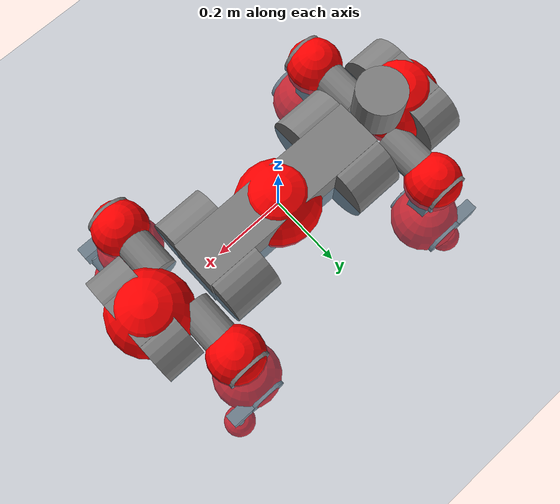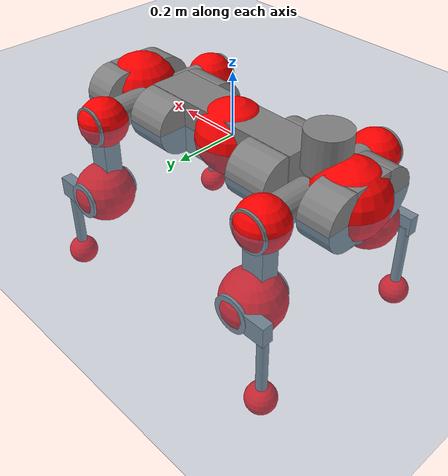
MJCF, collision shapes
<mujoco model="anymal_c">
  <compiler angle="radian" assetdir="assets" balanceinertia="true" inertiafromgeom="false"/>

  <option timestep="0.005" density="1.2" viscosity="2e-05"/>

  <size nkey="1"/>

  <visual>
    <quality shadowsize="8192"/>
    <map shadowclip="0.5"/>
  </visual>

  <default>
    <default class="/">
      <material specular="0" shininess="0.25"/>
      <geom contype="0" conaffinity="0" group="1" solref="-1000 -80"/>
      <site size="0.01 0.005 0.005" group="5"/>
      <general forcelimited="true" forcerange="-80 80" biastype="affine" gainprm="80" biasprm="0 -80 -2"/>
      <default class="anymal_c">
        <joint armature="0.01" damping="0.01" frictionloss="0.1"/>
        <default class="visual">
          <geom type="mesh" group="2"/>
          <default class="visual_zflip"/>
        </default>
        <default class="collision">
          <geom type="cylinder" group="3"/>
          <default class="foot">
            <geom size="0.03 0 0" type="sphere" condim="6" priority="1" friction="0.8 0.02 0.01" solimp="0.015 1 0.03"/>
          </default>
        </default>
      </default>
      <default class="reward_collision_sphere">
        <geom group="5" rgba="1 0 0 1"/>
      </default>
    </default>
  </default>

  <asset>
    <texture type="skybox" colorspace="auto" name="//unnamed_texture_0" builtin="gradient" rgb1="0.95 0.95 0.95" rgb2="0.95 0.95 0.95" width="100" height="600"/>
    <texture type="2d" colorspace="auto" name="texplane" builtin="checker" rgb1="0.345 0.575 0.748" rgb2="0.345 0.575 0.748" markrgb="1 1 1" width="512" height="512"/>
    <texture type="2d" colorspace="linear" name="base" file="base.png"/>
    <texture type="2d" colorspace="linear" name="top_shell" file="top_shell.png"/>
    <texture type="2d" colorspace="linear" name="bottom_shell" file="bottom_shell.png"/>
    <texture type="2d" colorspace="linear" name="remote" file="remote.png"/>
    <texture type="2d" colorspace="linear" name="hatch" file="hatch.png"/>
    <texture type="2d" colorspace="linear" name="handle" file="handle.png"/>
    <texture type="2d" colorspace="linear" name="face" file="face.png"/>
    <texture type="2d" colorspace="linear" name="battery" file="battery.png"/>
    <texture type="2d" colorspace="linear" name="lidar_cage" file="lidar_cage.png"/>
    <texture type="2d" colorspace="linear" name="depth_camera" file="depth_camera.png"/>
    <texture type="2d" colorspace="linear" name="wide_angle_camera" file="wide_angle_camera.png"/>
    <texture type="2d" colorspace="linear" name="lidar" file="lidar.png"/>
    <texture type="2d" colorspace="linear" name="drive" file="drive.png"/>
    <texture type="2d" colorspace="linear" name="hip_l" file="hip_l.png"/>
    <texture type="2d" colorspace="linear" name="shank_l" file="shank_l.png"/>
    <texture type="2d" colorspace="linear" name="foot" file="foot.png"/>
    <texture type="2d" colorspace="linear" name="thigh" file="thigh.png"/>
    <texture type="2d" colorspace="linear" name="shank_r" file="shank_r.png"/>
    <texture type="2d" colorspace="linear" name="hip_r" file="hip_r.png"/>
    <material name="MatPlane" class="/" texture="texplane" texuniform="true" texrepeat="2 2" specular="0.9" shininess="0.5"/>
    <material name="black_plastic" class="/" rgba="0.007 0.007 0.007 1"/>
    <material name="green" class="/" rgba="0.052 0.178 0.033 1"/>
    <material name="red" class="/" rgba="0.178 0.006 0.005 1"/>
    <material name="yellow" class="/" rgba="0.178 0.119 0.006 1"/>
    <material name="lwl" class="/" rgba="0.8 0.8 0.8 1"/>
    <material name="base" class="/" texture="base"/>
    <material name="top_shell" class="/" texture="top_shell"/>
    <material name="bottom_shell" class="/" texture="bottom_shell"/>
    <material name="hip_l" class="/" texture="hip_l"/>
    <material name="thigh" class="/" texture="thigh"/>
    <material name="shank_l" class="/" texture="shank_l"/>
    <material name="foot" class="/" texture="foot"/>
    <material name="hip_r" class="/" texture="hip_r"/>
    <material name="shank" class="/" texture="shank_r"/>
    <material name="hatch" class="/" texture="hatch"/>
    <material name="remote" class="/" texture="remote"/>
    <material name="handle" class="/" texture="handle"/>
    <material name="face" class="/" texture="face"/>
    <material name="depth_camera" class="/" texture="depth_camera"/>
    <material name="wide_angle_camera" class="/" texture="wide_angle_camera"/>
    <material name="battery" class="/" texture="battery"/>
    <material name="lidar_cage" class="/" texture="lidar_cage"/>
    <material name="lidar" class="/" texture="lidar"/>
    <material name="drive" class="/" texture="drive"/>
    <mesh name="base_0" class="/" file="base_0.obj"/>
    <mesh name="base_1" class="/" file="base_1.obj"/>
    <mesh name="base_2" class="/" file="base_2.obj"/>
    <mesh name="base_3" class="/" file="base_3.obj"/>
    <mesh name="base_4" class="/" file="base_4.obj"/>
    <mesh name="base_5" class="/" file="base_5.obj"/>
    <mesh name="top_shell" class="/" file="top_shell.obj"/>
    <mesh name="bottom_shell" class="/" file="bottom_shell.obj"/>
    <mesh name="remote" class="/" file="remote.obj"/>
    <mesh name="handle" class="/" file="handle.obj"/>
    <mesh name="face" class="/" file="face.obj"/>
    <mesh name="wide_angle_camera" class="/" file="wide_angle_camera.obj"/>
    <mesh name="depth_camera" class="/" file="depth_camera.obj"/>
    <mesh name="battery" class="/" file="battery.obj"/>
    <mesh name="lidar_cage" class="/" file="lidar_cage.obj"/>
    <mesh name="lidar" class="/" file="lidar.obj"/>
    <mesh name="drive" class="/" file="drive.obj"/>
    <mesh name="hip_l" class="/" file="hip_l.obj"/>
    <mesh name="thigh" class="/" file="thigh.obj"/>
    <mesh name="shank_l" class="/" file="shank_l.obj"/>
    <mesh name="foot" class="/" file="foot.obj"/>
    <mesh name="hip_r" class="/" file="hip_r.obj"/>
    <mesh name="hatch" class="/" file="hatch.obj"/>
    <mesh name="shank_r" class="/" file="shank_r.obj"/>
  </asset>

  <worldbody>
    <geom name="floor" class="/" size="100 100 0.125" type="plane" group="0" material="MatPlane"/>
    <light name="toplight_shadow" class="/" pos="0 0 5" dir="0.0990148 0.0990148 -0.990148" type="directional" ambient="0.04 0.04 0.04" diffuse="0.55 0.55 0.55" specular="0.12 0.12 0.12"/>
    <light name="toplight_fill" class="/" pos="0 0 5" dir="0.0990148 0.0990148 -0.990148" type="directional" castshadow="false" ambient="0.04 0.04 0.04" diffuse="0.3 0.3 0.3" specular="0.08 0.08 0.08"/>
    <body name="trunk" childclass="anymal_c" pos="2.34992e-05 -0.00232646 -0.00255732" quat="1 -0.000370483 0.000706674 0.000139733">
      <inertial pos="0.00293552 0.000344495 0.0417929" quat="0.489536 0.500524 0.506059 0.50372" mass="17.7122" diaginertia="0.485718 0.952241 0.0997688"/>
      <joint name="//unnamed_joint_0" type="free" armature="0" damping="0" frictionloss="0"/>
      <geom name="//unnamed_geom_1" class="visual" material="green" mesh="base_0"/>
      <geom name="//unnamed_geom_2" class="visual" material="yellow" mesh="base_1"/>
      <geom name="//unnamed_geom_3" class="visual" material="red" mesh="base_2"/>
      <geom name="//unnamed_geom_4" class="visual" material="black_plastic" mesh="base_3"/>
      <geom name="//unnamed_geom_5" class="visual" material="lwl" mesh="base_4"/>
      <geom name="//unnamed_geom_6" class="visual" material="base" mesh="base_5"/>
      <geom name="trunk_1" class="collision" size="0.279042 0.067355 0.0865992" type="box"/>
      <geom name="trunk_2" class="collision" size="0.0865992 0.0697605" pos="0.206231 0.0761063 0" quat="0.707107 0 0.707107 0"/>
      <geom name="trunk_3" class="collision" size="0.0865992 0.0697605" pos="-0.206231 0.0761063 0" quat="0.707107 0 0.707107 0"/>
      <geom name="trunk_4" class="collision" size="0.0865992 0.0697605" pos="0.206231 -0.0761063 0" quat="0.707107 0 0.707107 0"/>
      <geom name="trunk_5" class="collision" size="0.0865992 0.0697605" pos="-0.206231 -0.0761063 0" quat="0.707107 0 0.707107 0"/>
      <geom name="//unnamed_geom_12" class="visual" material="top_shell" mesh="top_shell"/>
      <geom name="//unnamed_geom_13" class="visual" material="bottom_shell" mesh="bottom_shell"/>
      <geom name="//unnamed_geom_14" class="visual" material="remote" mesh="remote"/>
      <geom name="//unnamed_geom_15" class="visual" material="handle" mesh="handle"/>
      <geom name="//unnamed_geom_16" class="visual" pos="0.393025 0 0" quat="1 0 0 0" material="face" mesh="face"/>
      <geom name="trunk_6" class="collision" size="0.0529218 0.067355 0.0865992" pos="0.445175 0 0" type="box"/>
      <geom name="//unnamed_geom_18" class="collision" size="0.0865992 0.0529218" pos="0.445175 0.0761063 0" quat="0.707107 0 0.707107 0"/>
      <geom name="//unnamed_geom_19" class="collision" size="0.0865992 0.0529218" pos="0.445175 -0.0761063 0" quat="0.707107 0 0.707107 0"/>
      <geom name="//unnamed_geom_20" class="visual" pos="0.437728 0 -0.0241186" quat="0.965926 0 0.258819 0" material="depth_camera" mesh="depth_camera"/>
      <geom name="//unnamed_geom_21" class="visual" pos="0.486422 0 0.0127427" material="wide_angle_camera" mesh="wide_angle_camera"/>
      <geom name="//unnamed_geom_22" class="visual_zflip" pos="-0.393025 0 0" quat="0 0 0 1" material="face" mesh="face"/>
      <geom name="trunk_7" class="collision" size="0.0529218 0.067355 0.0865992" pos="-0.445175 0 0" quat="0 0 0 1" type="box"/>
      <geom name="//unnamed_geom_24" class="collision" size="0.0865992 0.0529218" pos="-0.445175 -0.0761063 0" quat="0 -0.707107 0 0.707107"/>
      <geom name="//unnamed_geom_25" class="collision" size="0.0865992 0.0529218" pos="-0.445175 0.0761063 0" quat="0 -0.707107 0 0.707107"/>
      <geom name="//unnamed_geom_26" class="visual" pos="-0.437728 0 -0.0241186" quat="0 -0.258819 0 0.965926" material="depth_camera" mesh="depth_camera"/>
      <geom name="//unnamed_geom_27" class="visual_zflip" pos="-0.486422 0 0.0127427" quat="0 0 0 1" material="wide_angle_camera" mesh="wide_angle_camera"/>
      <geom name="//unnamed_geom_28" class="visual" material="battery" mesh="battery"/>
      <geom name="//unnamed_geom_29" class="visual" pos="0 0.0849503 0.0254649" quat="0.683013 -0.183013 0.183013 0.683013" material="depth_camera" mesh="depth_camera"/>
      <geom name="//unnamed_geom_30" class="visual" pos="0 -0.0849503 0.0254649" quat="0.683013 0.183013 0.183013 -0.683013" material="depth_camera" mesh="depth_camera"/>
      <geom name="//unnamed_geom_31" class="visual" pos="-0.345141 0 0.0625645" quat="1 0 0 0" material="lidar_cage" mesh="lidar_cage"/>
      <geom name="trunk_8" class="collision" size="0.067355 0.0577328" pos="-0.345141 0 0.113638"/>
      <geom name="//unnamed_geom_33" class="visual" pos="-0.345141 5.46259e-05 0.121043" quat="0.707107 0 0 -0.707107" material="lidar" mesh="lidar"/>
      <geom name="//unnamed_geom_34" class="visual" pos="0.284362 0.112988 4.07128e-09" quat="0.258819 0.965926 0 0" material="drive" mesh="drive"/>
      <geom name="//unnamed_geom_35" class="visual" pos="0.284362 -0.112988 -4.07128e-09" quat="0.258819 -0.965926 0 0" material="drive" mesh="drive"/>
      <geom name="//unnamed_geom_36" class="visual" pos="-0.284362 0.112988 -4.07128e-09" quat="0 0 0.965926 -0.258819" material="drive" mesh="drive"/>
      <geom name="//unnamed_geom_37" class="visual" pos="-0.284362 -0.112988 4.07128e-09" quat="0 0 -0.965926 -0.258819" material="drive" mesh="drive"/>
      <geom name="//unnamed_geom_38" class="visual" pos="0.10999 0 0.0621389" quat="1 0 0 0" material="hatch" mesh="hatch"/>
      <geom name="//unnamed_geom_39" class="reward_collision_sphere" size="0.115466"/>
      <geom name="//unnamed_geom_40" class="reward_collision_sphere" size="0.115466" pos="0.426686 0 0"/>
      <geom name="//unnamed_geom_41" class="reward_collision_sphere" size="0.115466" pos="-0.426686 0 0"/>
      <site name="imu" pos="0.231431 0.0212102 0.0305706" size="0.00962214"/>
      <camera name="track" pos="0 -2.17447 0" quat="0.707107 0.707107 0 0" mode="trackcom"/>
      <camera name="ego_camera" pos="0.426686 0 -0.0340487" quat="-0.5 -0.5 0.5 0.5"/>
      <body name="LF_HIP" pos="0.282214 0.110845 0.00281601" quat="0.258899 0.965904 4.8649e-05 -8.7468e-05">
        <inertial pos="0.0544169 -0.0191067 -0.00965891" quat="-0.126489 0.707069 -0.133723 0.682768" mass="2.51163" diaginertia="0.00452779 0.00753276 0.00154186"/>
        <joint name="LF_HAA" pos="0 0 0" axis="0.999972 -0.00234809 0.00707906" range="-0.700627 0.467362" armature="0.0105667" damping="0" frictionloss="0.108991"/>
        <geom name="//unnamed_geom_42" class="visual" pos="0 0.000239495 -3.93368e-05" quat="0.258819 -0.965926 0 0" material="hip_l" mesh="hip_l"/>
        <geom name="//unnamed_geom_43" class="visual" pos="0.0567966 -0.070568 -0.0389968" quat="0.183013 -0.683013 0.683013 0.183013" material="drive" mesh="drive"/>
        <geom name="//unnamed_geom_44" class="collision" size="0.0481107 0.067355" pos="0.0567966 -0.0130031 -0.00587766" quat="-0.353553 -0.612372 0.612372 -0.353553"/>
        <body name="LF_THIGH" pos="0.0555818 -0.0788569 -0.0338332" quat="0.183615 -0.682837 0.683015 0.183059">
          <inertial pos="0.0292721 -0.000618294 -0.208283" quat="0.993461 -0.00806033 -0.0775671 0.0833884" mass="2.68616" diaginertia="0.0234033 0.0464555 0.00181377"/>
          <joint name="LF_HFE" pos="0 0 0" axis="0.999912 -0.00478232 0.0123539" range="-3.17326 3.17805" armature="0.0105852" damping="0.00764481" frictionloss="0.10969"/>
          <geom name="//unnamed_geom_45" class="visual" pos="-0.00276639 -4.35919e-06 0" quat="0.707107 0 0 -0.707107" material="thigh" mesh="thigh"/>
          <geom name="//unnamed_geom_46" class="collision" size="0.0625439 0.0384885" pos="0.0379276 0 0" quat="0.5 0.5 -0.5 -0.5"/>
          <geom name="//unnamed_geom_47" class="collision" size="0.036083 0.0288664 0.135974" pos="0.0284457 0 -0.120289" quat="0.707107 0 0 -0.707107" type="box"/>
          <geom name="//unnamed_geom_48" class="visual" pos="0.0951035 0 -0.242597" quat="1 0 0 0" material="drive" mesh="drive"/>
          <geom name="//unnamed_geom_49" class="collision" size="0.0481107 0.067355" pos="0.0287302 0 -0.242597" quat="0.707107 0 0.707107 0"/>
          <geom name="//unnamed_geom_50" class="reward_collision_sphere" size="0.0769771" pos="0.0237048 0 0"/>
          <body name="LF_SHANK" pos="0.0968908 -0.000154965 -0.243273" quat="0.999999 -0.00116021 0.000104906 0.000391435">
            <inertial pos="0.00786314 -0.063794 -0.0707438" quat="0.99321 -0.11275 0.000741794 -0.0286636" mass="0.536781" diaginertia="0.0075823 0.0145371 0.000485023"/>
            <joint name="LF_KFE" pos="0 0 0" axis="0.999956 -0.00488533 0.00798408" range="-3.12552 3.11255" armature="0.00816068" damping="0.0106761" frictionloss="0.0960274"/>
            <geom name="//unnamed_geom_51" class="visual" pos="-0.00090206 -0.00480983 0" quat="0.707107 0 0 -0.707107" material="shank_l" mesh="shank_l"/>
            <geom name="LF_kfe_act" class="collision" size="0.0577328 0.0192443" pos="0.0189638 0 0" quat="0.5 0.5 -0.5 -0.5"/>
            <geom name="//unnamed_geom_53" class="collision" size="0.0553263 0.0324747 0.0182821" pos="0.0189638 -0.0625148 0" quat="0.5 0.5 -0.5 -0.5" type="box"/>
            <geom name="//unnamed_geom_54" class="visual" pos="0.0123741 -0.0971721 -0.287686" quat="0.382683 0 0 -0.92388" material="foot" mesh="foot"/>
            <geom name="LF_calf" class="collision" size="0.0168387 0.135915" pos="0.0123739 -0.0956221 -0.143843" quat="0.707107 0 0 -0.707107"/>
            <geom name="LF_foot" class="foot" size="0.0344532" pos="0.0123739 -0.0956221 -0.268534" quat="0.707107 0 0 -0.707107"/>
            <geom name="//unnamed_geom_57" class="reward_collision_sphere" size="0.0962214" pos="-0.0474095 0 0"/>
            <geom name="//unnamed_geom_58" class="reward_collision_sphere" size="0.0481107" pos="0.0123739 -0.0956221 -0.268534"/>
            <site name="LF_foot" class="foot" pos="0.0123739 -0.0956221 -0.268534" quat="0.707107 0 0 -0.707107" size="0.00962214"/>
          </body>
        </body>
      </body>
      <body name="RF_HIP" pos="0.285013 -0.112532 0.000748472" quat="0.258735 -0.965947 -0.000761433 -0.00113773">
        <inertial pos="0.0555547 0.0191298 -0.00683049" quat="0.13073 0.679916 0.126139 0.710432" mass="2.50058" diaginertia="0.00460725 0.00758524 0.00146453"/>
        <joint name="RF_HAA" pos="0 0 0" axis="0.999994 -0.00285311 0.00211622" range="-0.437724 0.70701" armature="0.0098227" damping="0.010047" frictionloss="0.0954308"/>
        <geom name="//unnamed_geom_59" class="visual" pos="0 -0.000239493 -3.93367e-05" quat="0.258819 0.965926 0 0" material="hip_r" mesh="hip_r"/>
        <geom name="//unnamed_geom_60" class="visual" pos="0.0567966 0.070568 -0.0389968" quat="0.183013 0.683013 0.683013 -0.183013" material="drive" mesh="drive"/>
        <geom name="//unnamed_geom_61" class="collision" size="0.0481107 0.067355" pos="0.0567966 0.0130031 -0.00587766" quat="-0.353553 0.612372 0.612372 0.353553"/>
        <body name="RF_THIGH" pos="0.0569484 0.07795 -0.0350429" quat="0.182872 0.682979 0.683101 -0.18295">
          <inertial pos="0.0270598 0.000463266 -0.210758" quat="0.992775 -0.00495706 -0.080649 0.0887126" mass="2.67885" diaginertia="0.0224546 0.0425449 0.00177522"/>
          <joint name="RF_HFE" pos="0 0 0" axis="0.99995 0.00871218 0.00490026" stiffness="0.00259961" range="-3.18436 3.09165" armature="0.00948023" damping="0.0111771" frictionloss="0.109111"/>
          <geom name="//unnamed_geom_62" class="visual" pos="-0.00276639 -4.35919e-06 0" quat="0.707107 0 0 -0.707107" material="thigh" mesh="thigh"/>
          <geom name="//unnamed_geom_63" class="collision" size="0.0625439 0.0384885" pos="0.0379276 0 0" quat="0.5 0.5 0.5 0.5"/>
          <geom name="//unnamed_geom_64" class="collision" size="0.036083 0.0288664 0.135974" pos="0.0284457 0 -0.120289" quat="0.707107 0 0 0.707107" type="box"/>
          <geom name="//unnamed_geom_65" class="visual" pos="0.0951035 0 -0.242597" quat="1 0 0 0" material="drive" mesh="drive"/>
          <geom name="//unnamed_geom_66" class="collision" size="0.0481107 0.067355" pos="0.0287302 0 -0.242597" quat="0.707107 0 0.707107 0"/>
          <geom name="//unnamed_geom_67" class="reward_collision_sphere" size="0.0769771" pos="0.0237048 0 0"/>
          <body name="RF_SHANK" pos="0.0979654 0.000123691 -0.243301" quat="1 0.000132175 -8.14578e-05 -0.000214688">
            <inertial pos="0.00819236 0.0662632 -0.070228" quat="0.992904 0.116111 -0.00118553 0.0256562" mass="0.545459" diaginertia="0.00806132 0.013905 0.000503309"/>
            <joint name="RF_KFE" pos="0 0 0" axis="0.999982 -0.00130568 -0.00586598" range="-3.15351 3.14289" armature="0.00917416" damping="0.0227635" frictionloss="0.103684"/>
            <geom name="//unnamed_geom_68" class="visual" pos="-0.000902055 0.00480982 0" quat="0.707107 0 0 0.707107" material="shank" mesh="shank_r"/>
            <geom name="RF_kfe_act" class="collision" size="0.0577328 0.0192443" pos="0.0189638 0 0" quat="0.5 0.5 0.5 0.5"/>
            <geom name="//unnamed_geom_70" class="collision" size="0.0553263 0.0324747 0.0182821" pos="0.0189638 0.0625148 0" quat="0.5 0.5 0.5 0.5" type="box"/>
            <geom name="//unnamed_geom_71" class="visual" pos="0.0123737 0.0971721 -0.287686" quat="0.382683 0 0 0.92388" material="foot" mesh="foot"/>
            <geom name="RF_calf" class="collision" size="0.0168387 0.135915" pos="0.0123739 0.0956221 -0.143843" quat="0.707107 0 0 0.707107"/>
            <geom name="RF_foot" class="foot" size="0.0277363" pos="0.0123739 0.0956221 -0.268534" quat="0.707107 0 0 0.707107"/>
            <geom name="//unnamed_geom_74" class="reward_collision_sphere" size="0.0962214" pos="-0.0474095 0 0"/>
            <geom name="//unnamed_geom_75" class="reward_collision_sphere" size="0.0481107" pos="0.0123739 0.0956221 -0.268534"/>
            <site name="RF_foot" class="foot" pos="0.0123739 0.0956221 -0.268534" quat="0.707107 0 0 0.707107" size="0.00962214"/>
          </body>
        </body>
      </body>
      <body name="LH_HIP" pos="-0.283837 0.114734 0.00279433" quat="-0.000464819 -0.000413792 0.966001 -0.258537">
        <inertial pos="0.0537545 0.0151544 -0.00772027" quat="0.135068 0.679443 0.128529 0.709644" mass="2.48423" diaginertia="0.00444072 0.00758019 0.00142297"/>
        <joint name="LH_HAA" pos="0 0 0" axis="0.999998 -0.000197419 -0.00219253" stiffness="0.00892275" range="-0.51079 0.724307" armature="0.00981342" damping="0.00894627" frictionloss="0.108428"/>
        <geom name="//unnamed_geom_76" class="visual" pos="0 -0.000239493 -3.93367e-05" quat="-0.258819 -0.965926 0 0" material="hip_r" mesh="hip_r"/>
        <geom name="//unnamed_geom_77" class="visual" pos="0.0567966 0.070568 -0.0389968" quat="0.183013 0.683013 0.683013 -0.183013" material="drive" mesh="drive"/>
        <geom name="//unnamed_geom_78" class="collision" size="0.0481107 0.067355" pos="0.0567966 0.0130031 -0.00587766" quat="-0.353553 0.612372 0.612372 0.353553"/>
        <body name="LH_THIGH" pos="0.0561308 0.0818426 -0.0337408" quat="0.183106 0.683006 0.683 -0.182992">
          <inertial pos="0.0298861 -0.00073467 -0.209468" quat="0.992424 -0.00900934 -0.0807978 0.0921194" mass="2.68123" diaginertia="0.0236672 0.0442636 0.00191756"/>
          <joint name="LH_HFE" pos="0 0 0" axis="0.99994 -0.0108706 0.00157019" range="-3.14745 3.14967" armature="0.00855093" damping="0.00721664" frictionloss="0.0849127"/>
          <geom name="//unnamed_geom_79" class="visual" pos="-0.00276639 -4.35919e-06 0" quat="0.707107 0 0 -0.707107" material="thigh" mesh="thigh"/>
          <geom name="//unnamed_geom_80" class="collision" size="0.0625439 0.0384885" pos="0.0379276 0 0" quat="0.5 0.5 -0.5 -0.5"/>
          <geom name="//unnamed_geom_81" class="collision" size="0.036083 0.0288664 0.135974" pos="0.0284457 0 -0.120289" quat="0.707107 0 0 -0.707107" type="box"/>
          <geom name="//unnamed_geom_82" class="visual" pos="0.0951035 0 -0.242597" quat="1 0 0 0" material="drive" mesh="drive"/>
          <geom name="//unnamed_geom_83" class="collision" size="0.0481107 0.067355" pos="0.0287302 0 -0.242597" quat="0.707107 0 0.707107 0"/>
          <geom name="//unnamed_geom_84" class="reward_collision_sphere" size="0.0769771" pos="0.0237048 0 0"/>
          <body name="LH_SHANK" pos="0.0976084 -0.000658304 -0.240505" quat="1 3.66315e-05 4.57168e-05 -6.6419e-05">
            <inertial pos="0.00494697 0.0661726 -0.0658602" quat="0.992769 0.117413 -0.00240052 0.0248507" mass="0.528474" diaginertia="0.00775965 0.013864 0.000506159"/>
            <joint name="LH_KFE" pos="0 0 0" axis="0.999982 -0.00596385 -0.000926089" range="-3.17994 3.13703" armature="0.00845036" damping="0.00661281" frictionloss="0.100388"/>
            <geom name="//unnamed_geom_85" class="visual" pos="-0.000902055 0.00480982 0" quat="-0.707107 0 0 -0.707107" material="shank" mesh="shank_r"/>
            <geom name="LH_kfe_act" class="collision" size="0.0577328 0.0192443" pos="0.0189638 0 0" quat="0.5 0.5 -0.5 -0.5"/>
            <geom name="//unnamed_geom_87" class="collision" size="0.0553263 0.0324747 0.0182821" pos="0.0189638 0.0625148 0" quat="0.5 0.5 -0.5 -0.5" type="box"/>
            <geom name="//unnamed_geom_88" class="visual" pos="0.0123737 0.0971721 -0.287686" quat="-0.382683 0 0 -0.92388" material="foot" mesh="foot"/>
            <geom name="LH_calf" class="collision" size="0.0168387 0.135915" pos="0.0123739 0.0956221 -0.143843" quat="0.707107 0 0 -0.707107"/>
            <geom name="LH_foot" class="foot" size="0.0320325" pos="0.0123739 0.0956221 -0.268534" quat="0.707107 0 0 -0.707107"/>
            <geom name="//unnamed_geom_91" class="reward_collision_sphere" size="0.0962214" pos="-0.0474095 0 0"/>
            <geom name="//unnamed_geom_92" class="reward_collision_sphere" size="0.0481107" pos="0.0123739 0.0956221 -0.268534"/>
            <site name="LH_foot" class="foot" pos="0.0123739 0.0956221 -0.268534" quat="0.707107 0 0 -0.707107" size="0.00962214"/>
          </body>
        </body>
      </body>
      <body name="RH_HIP" pos="-0.282412 -0.112722 0.00160335" quat="0.000477611 -0.000247887 -0.965596 -0.260048">
        <inertial pos="0.053827 -0.0149348 -0.00712743" quat="-0.128598 0.710274 -0.13202 0.67937" mass="2.48998" diaginertia="0.00468354 0.0077836 0.00143553"/>
        <joint name="RH_HAA" pos="0 0 0" axis="1 0.00038972 -0.000170372" range="-0.716568 0.485596" armature="0.00969527" damping="0.00412456" frictionloss="0.0909212"/>
        <geom name="//unnamed_geom_93" class="visual" pos="0 0.000239495 -3.93368e-05" quat="-0.258819 0.965926 0 0" material="hip_l" mesh="hip_l"/>
        <geom name="//unnamed_geom_94" class="visual" pos="0.0567966 -0.070568 -0.0389968" quat="-0.183013 0.683013 -0.683013 -0.183013" material="drive" mesh="drive"/>
        <geom name="//unnamed_geom_95" class="collision" size="0.0481107 0.067355" pos="0.0567966 -0.0130031 -0.00587766" quat="0.353553 0.612372 -0.612372 0.353553"/>
        <body name="RH_THIGH" pos="0.0553489 -0.0789651 -0.0367474" quat="-0.182024 0.682322 -0.68398 -0.182961">
          <inertial pos="0.0295194 -0.00288587 -0.209892" quat="0.993308 -0.00551827 -0.0797799 0.0833252" mass="2.55836" diaginertia="0.0217208 0.0439498 0.00179661"/>
          <joint name="RH_HFE" pos="0 0 0" axis="0.999972 0.0066751 -0.00344275" range="-3.15328 3.19575" armature="0.0108944" damping="0.0027462" frictionloss="0.0881832"/>
          <geom name="//unnamed_geom_96" class="visual" pos="-0.00276639 -4.35919e-06 0" quat="0.707107 0 0 -0.707107" material="thigh" mesh="thigh"/>
          <geom name="//unnamed_geom_97" class="collision" size="0.0625439 0.0384885" pos="0.0379276 0 0" quat="0.5 0.5 0.5 0.5"/>
          <geom name="//unnamed_geom_98" class="collision" size="0.036083 0.0288664 0.135974" pos="0.0284457 0 -0.120289" quat="0.707107 0 0 0.707107" type="box"/>
          <geom name="//unnamed_geom_99" class="visual" pos="0.0951035 0 -0.242597" quat="1 0 0 0" material="drive" mesh="drive"/>
          <geom name="//unnamed_geom_100" class="collision" size="0.0481107 0.067355" pos="0.0287302 0 -0.242597" quat="0.707107 0 0.707107 0"/>
          <geom name="//unnamed_geom_101" class="reward_collision_sphere" size="0.0769771" pos="0.0237048 0 0"/>
          <body name="RH_SHANK" pos="0.0961339 0.002479 -0.243474" quat="1 0.00025858 3.92062e-05 -0.000178702">
            <inertial pos="0.00422673 -0.066686 -0.0659768" quat="0.992557 -0.12097 -0.00253025 -0.0138079" mass="0.521619" diaginertia="0.00808852 0.0136988 0.000517501"/>
            <joint name="RH_KFE" pos="0 0 0" axis="0.999884 0.0150185 0.00266656" stiffness="0.000739029" range="-3.09056 3.11489" armature="0.00863067" damping="0.00910851" frictionloss="0.104895"/>
            <geom name="//unnamed_geom_102" class="visual" pos="-0.00090206 -0.00480983 0" quat="0.707107 0 0 -0.707107" material="shank_l" mesh="shank_l"/>
            <geom name="RH_kfe_act" class="collision" size="0.0577328 0.0192443" pos="0.0189638 0 0" quat="0.5 0.5 0.5 0.5"/>
            <geom name="//unnamed_geom_104" class="collision" size="0.0553263 0.0324747 0.0182821" pos="0.0189638 -0.0625148 0" quat="0.5 0.5 0.5 0.5" type="box"/>
            <geom name="//unnamed_geom_105" class="visual" pos="0.0123741 -0.0971721 -0.287686" quat="0.382683 0 0 -0.92388" material="foot" mesh="foot"/>
            <geom name="RH_calf" class="collision" size="0.0168387 0.135915" pos="0.0123739 -0.0956221 -0.143843" quat="0.707107 0 0 0.707107"/>
            <geom name="RH_foot" class="foot" size="0.0240611" pos="0.0123739 -0.0956221 -0.268534" quat="0.707107 0 0 0.707107"/>
            <geom name="//unnamed_geom_108" class="reward_collision_sphere" size="0.0962214" pos="-0.0474095 0 0"/>
            <geom name="//unnamed_geom_109" class="reward_collision_sphere" size="0.0481107" pos="0.0123739 -0.0956221 -0.268534"/>
            <site name="RH_foot" class="foot" pos="0.0123739 -0.0956221 -0.268534" quat="0.707107 0 0 0.707107" size="0.00962214"/>
          </body>
        </body>
      </body>
    </body>
  </worldbody>

  <contact>
    <pair class="/" geom1="floor" geom2="LF_foot" name="//unnamed_contact_0"/>
    <pair class="/" geom1="floor" geom2="RF_foot" name="//unnamed_contact_1"/>
    <pair class="/" geom1="floor" geom2="LH_foot" name="//unnamed_contact_2"/>
    <pair class="/" geom1="floor" geom2="RH_foot" name="//unnamed_contact_3"/>
  </contact>

  <actuator>
    <general name="LF_HAA" class="/" joint="LF_HAA" forcerange="-79.2686 79.2686" gainprm="77.5656" biasprm="0 -77.5656 -2.04463"/>
    <general name="LF_HFE" class="/" joint="LF_HFE" forcerange="-69.0832 69.0832" gainprm="77.5656" biasprm="0 -77.5656 -2.04463"/>
    <general name="LF_KFE" class="/" joint="LF_KFE" forcerange="-78.6173 78.6173" gainprm="77.5656" biasprm="0 -77.5656 -2.04463"/>
    <general name="RF_HAA" class="/" joint="RF_HAA" forcerange="-74.8412 74.8412" gainprm="77.5656" biasprm="0 -77.5656 -2.04463"/>
    <general name="RF_HFE" class="/" joint="RF_HFE" forcerange="-78.3005 78.3005" gainprm="77.5656" biasprm="0 -77.5656 -2.04463"/>
    <general name="RF_KFE" class="/" joint="RF_KFE" forcerange="-71.0431 71.0431" gainprm="77.5656" biasprm="0 -77.5656 -2.04463"/>
    <general name="LH_HAA" class="/" joint="LH_HAA" forcerange="-79.189 79.189" gainprm="77.5656" biasprm="0 -77.5656 -2.04463"/>
    <general name="LH_HFE" class="/" joint="LH_HFE" forcerange="-78.8914 78.8914" gainprm="77.5656" biasprm="0 -77.5656 -2.04463"/>
    <general name="LH_KFE" class="/" joint="LH_KFE" forcerange="-75.1021 75.1021" gainprm="77.5656" biasprm="0 -77.5656 -2.04463"/>
    <general name="RH_HAA" class="/" joint="RH_HAA" forcerange="-77.8102 77.8102" gainprm="77.5656" biasprm="0 -77.5656 -2.04463"/>
    <general name="RH_HFE" class="/" joint="RH_HFE" forcerange="-71.7892 71.7892" gainprm="77.5656" biasprm="0 -77.5656 -2.04463"/>
    <general name="RH_KFE" class="/" joint="RH_KFE" forcerange="-78.8745 78.8745" gainprm="77.5656" biasprm="0 -77.5656 -2.04463"/>
  </actuator>

  <sensor>
    <gyro site="imu" name="imu_angular_velocity"/>
    <velocimeter site="imu" name="imu_linear_velocity"/>
    <framelinvel objtype="site" objname="LF_foot" name="LF_foot_global_linear_velocity"/>
    <framelinvel objtype="site" objname="RF_foot" name="RF_foot_global_linear_velocity"/>
    <framelinvel objtype="site" objname="LH_foot" name="LH_foot_global_linear_velocity"/>
    <framelinvel objtype="site" objname="RH_foot" name="RH_foot_global_linear_velocity"/>
  </sensor>

  <keyframe>
    <key name="home" qpos="0 0 0.55 1 0 0 0 0 0.4 -0.8 0 -0.4 0.8 0 -0.4 0.8 0 0.4 -0.8"/>
  </keyframe>
</mujoco>
